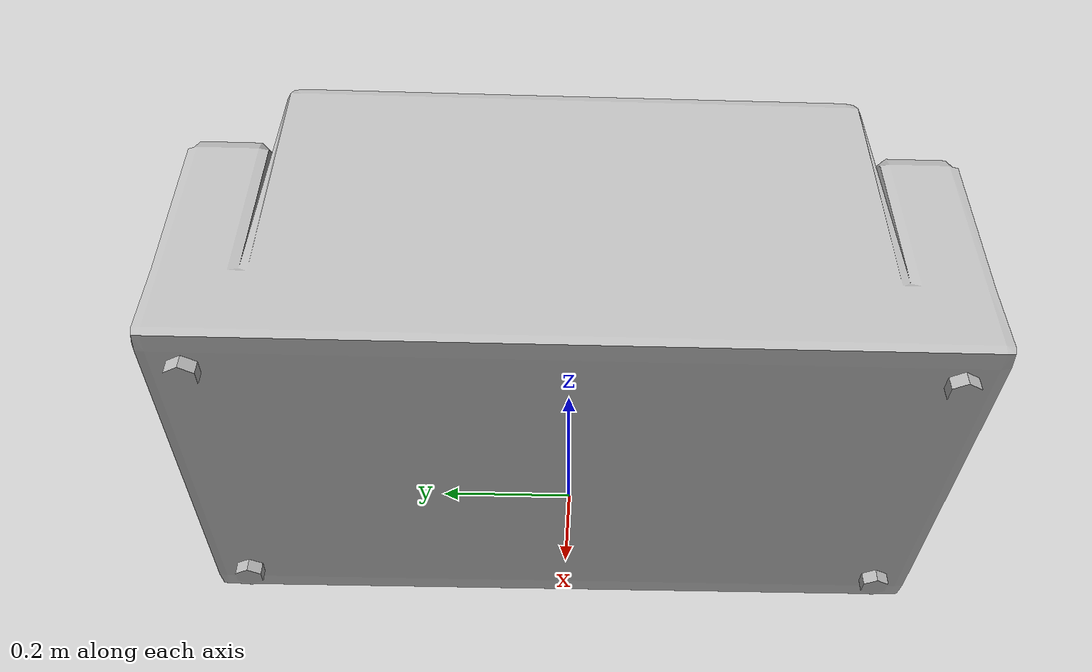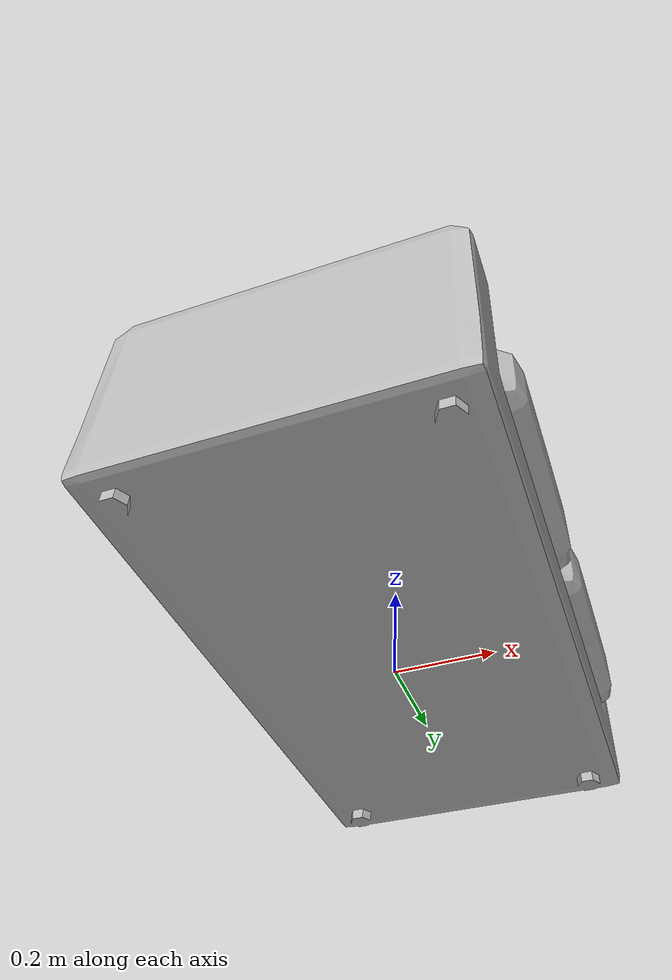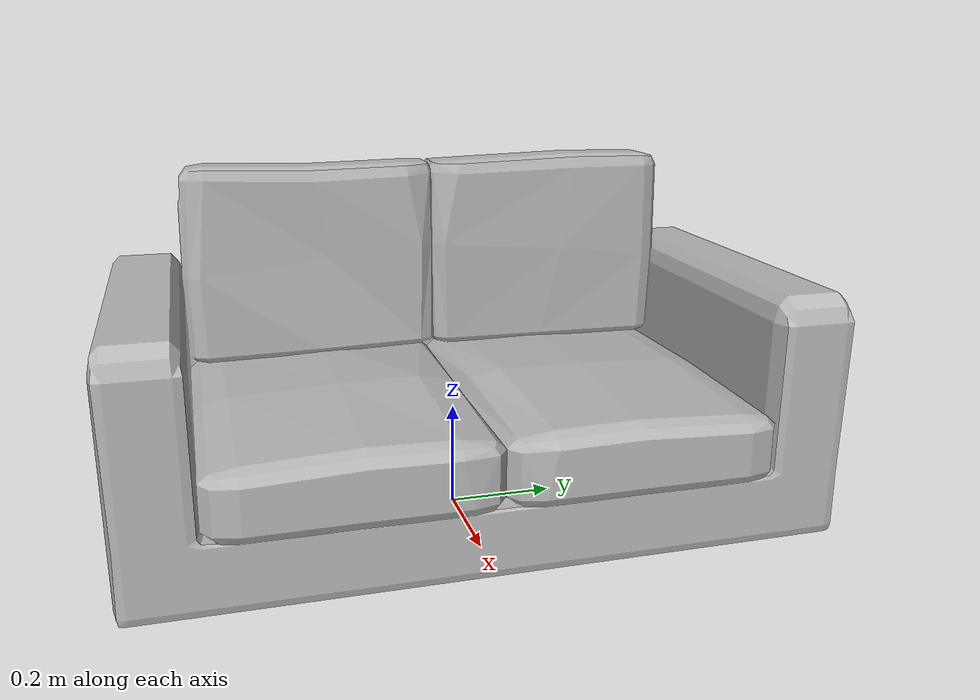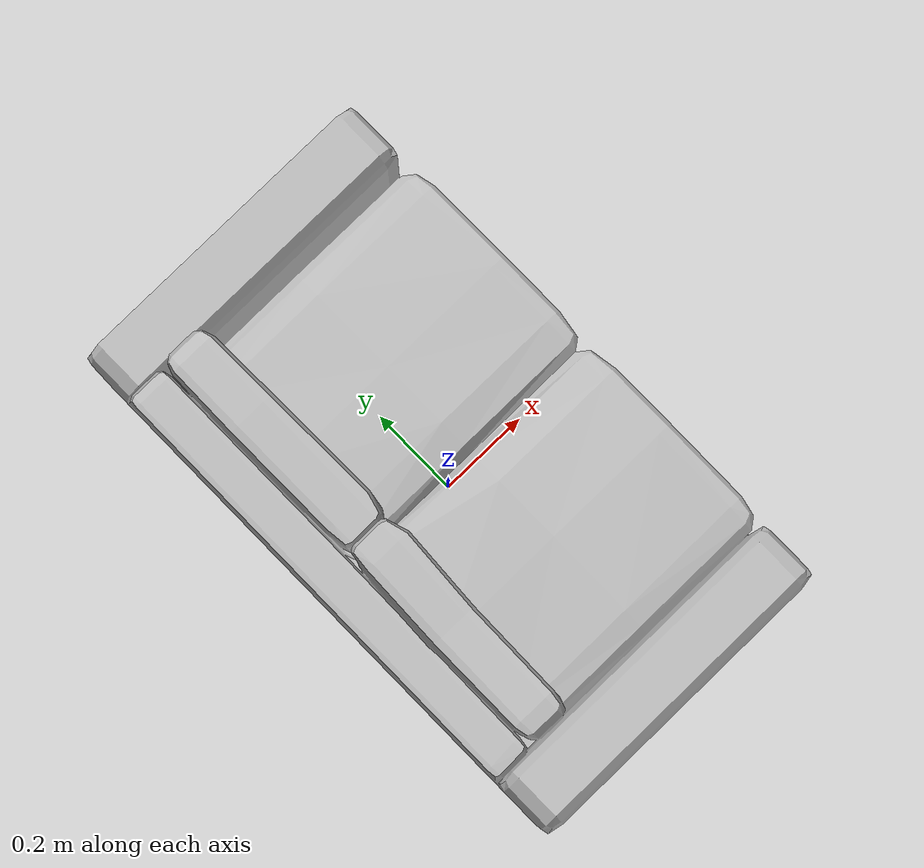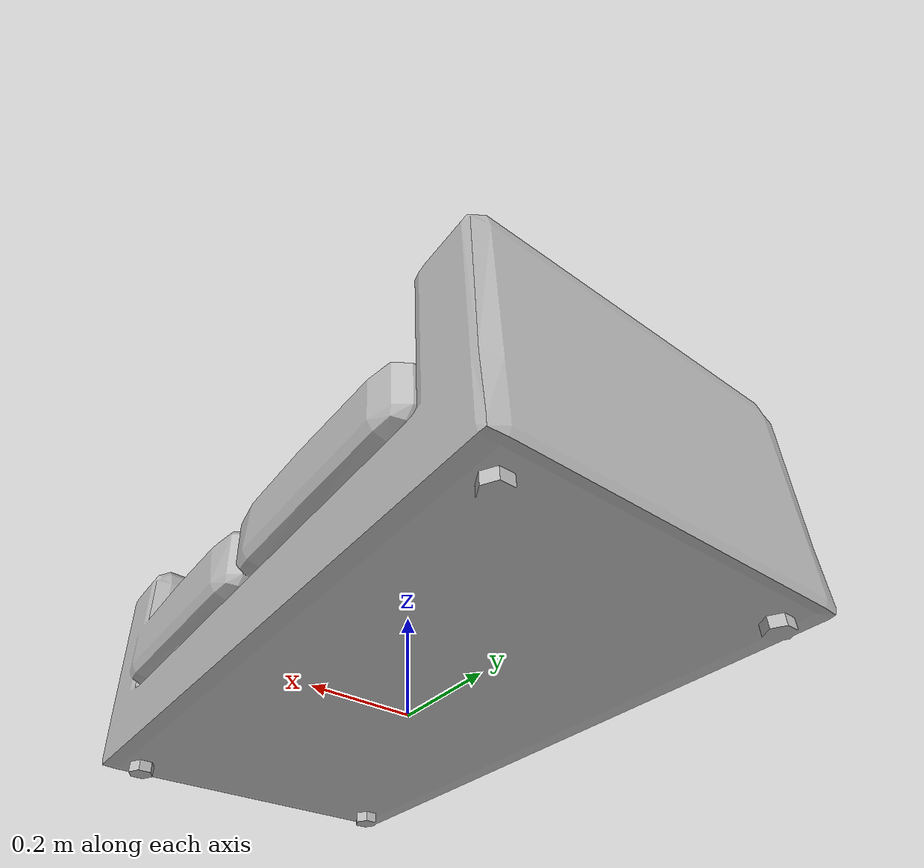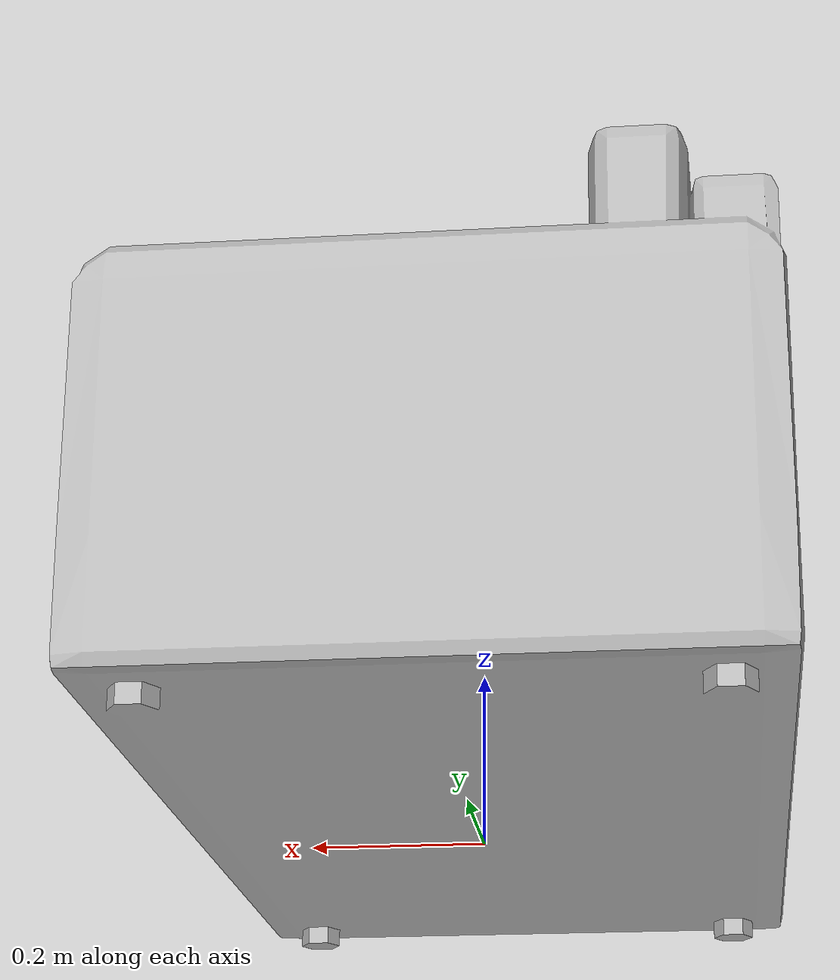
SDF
<?xml version="1.0" ?>
<sdf version="1.8">
    <model name="Sofa">
        <static>true</static>
        <link name="link">
            <pose>0 0 0 0 0 1.57079632679</pose>
            <visual name="visual">
                <geometry>
                    <mesh>
                        <uri>model://sofa/meshes/Sofa.obj</uri>
                        <scale>0.7 0.7 0.7</scale>
                    </mesh>
                </geometry>
            </visual>
            <collision name="collision">
                <geometry>
                    <mesh>
                        <uri>model://sofa/meshes/Sofa.obj</uri>
                        <scale>0.7 0.7 0.7</scale>
                    </mesh>
                </geometry>
            </collision>
        </link>
    </model>
</sdf>
